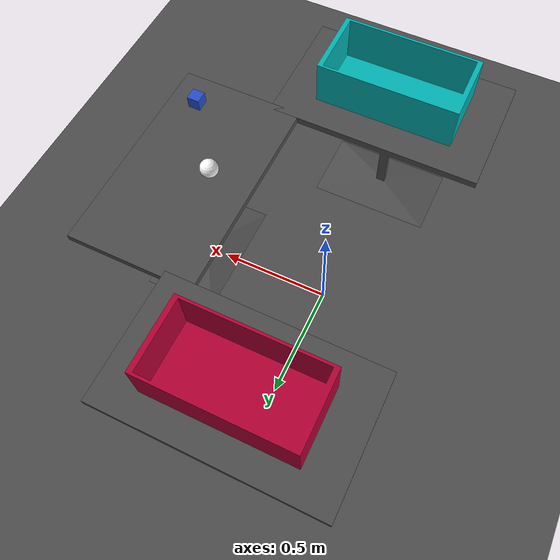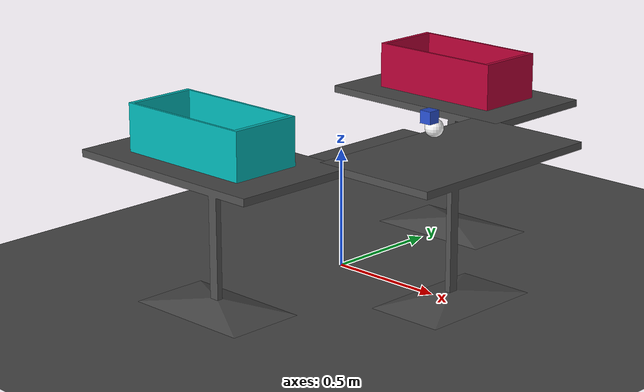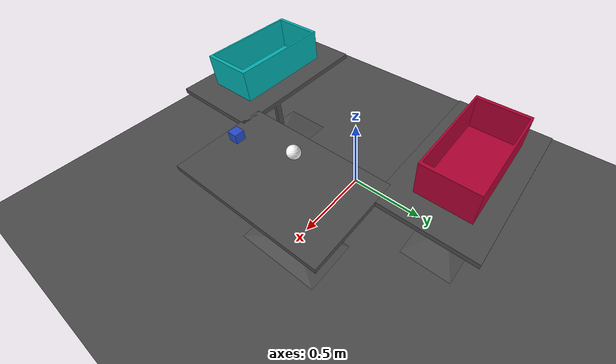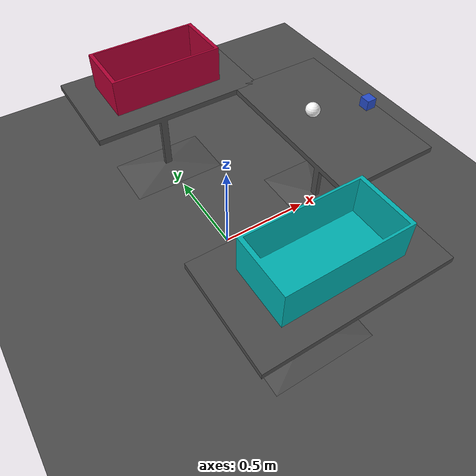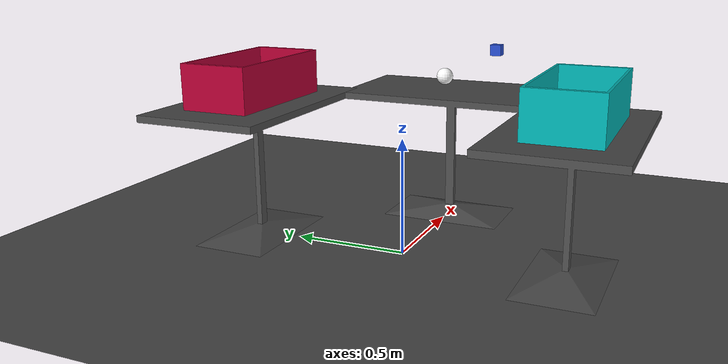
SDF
<sdf version="1.6">
 <world name="default">
  <light name="sun" type="directional">
   <pose>0 0 10 0 -0 0</pose>
   <diffuse>0.8 0.8 0.8 1</diffuse>
   <specular>0.2 0.2 0.2 1</specular>
   <attenuation>
    <range>1000</range>
    <constant>0.9</constant>
    <linear>0.01</linear>
    <quadratic>0.001</quadratic>
   </attenuation>
   <direction>-0.5 0.1 -0.9</direction>
  </light>
  <model name="ground_plane">
   <static>1</static>
   <link name="link">
    <collision name="collision">
     <geometry><plane><normal>0 0 1</normal><size>100 100</size></plane></geometry>
     <surface><friction><ode><mu>100</mu><mu2>50</mu2></ode></friction></surface>
    </collision>
    <visual name="visual">
     <cast_shadows>0</cast_shadows>
     <geometry><plane><normal>0 0 1</normal><size>100 100</size></plane></geometry>
     <material>
      <script><uri>file://media/materials/scripts/gazebo.material</uri><name>Gazebo/DarkGrey</name></script>
     </material>
    </visual>
   </link>
  </model>
  <gravity>0 0 -9.8</gravity>
  <magnetic_field>6e-06 2.3e-05 -4.2e-05</magnetic_field>
  <atmosphere type="adiabatic"/>
  <physics name="default_physics" default="0" type="ode">
   <max_step_size>0.001</max_step_size>
   <real_time_factor>1</real_time_factor>
   <real_time_update_rate>1000</real_time_update_rate>
  </physics>
  <scene><ambient>0.4 0.4 0.4 1</ambient><background>0.7 0.7 0.7 1</background><shadows>1</shadows></scene>
  <spherical_coordinates>
   <surface_model>EARTH_WGS84</surface_model>
   <latitude_deg>0</latitude_deg>
   <longitude_deg>0</longitude_deg>
   <elevation>0</elevation>
   <heading_deg>0</heading_deg>
  </spherical_coordinates>
  <model name="dropbox">
   <link name="link_0">
    <pose>0 -0 0 0 0 -1.56873</pose>
    <inertial>
     <mass>1</mass>
     <inertia>
      <ixx>0.166667</ixx>
      <ixy>0</ixy>
      <ixz>0</ixz>
      <iyy>0.166667</iyy>
      <iyz>0</iyz>
      <izz>0.166667</izz>
     </inertia>
    </inertial>
    <visual name="visual">
     <geometry><mesh><uri>model://dropbox/meshes/dropbox.dae</uri><scale>1 1 1</scale></mesh></geometry>
     <material>
      <lighting>1</lighting>
      <script><uri>file://media/materials/scripts/gazebo.material</uri><name>Gazebo/Grey</name></script>
      <ambient>0 0.3 0.3 1</ambient>
      <diffuse>0 0.7 0.7 1</diffuse>
      <specular>0 0.01 0.01 1</specular>
      <emissive>0 0 0 1</emissive>
     </material>
    </visual>
    <collision name="collision">
     <geometry><mesh><uri>model://dropbox/meshes/dropbox.dae</uri><scale>1 1 1</scale></mesh></geometry>
     <surface>
      <friction>
       <ode><mu>1</mu><mu2>1</mu2><fdir1>0 0 0</fdir1><slip1>0</slip1><slip2>0</slip2></ode>
       <torsional>
        <coefficient>1</coefficient>
        <patch_radius>0</patch_radius>
        <surface_radius>0</surface_radius>
        <use_patch_radius>1</use_patch_radius>
        <ode><slip>0</slip></ode>
       </torsional>
      </friction>
      <bounce><restitution_coefficient>0</restitution_coefficient><threshold>1e+06</threshold></bounce>
      <contact>
       <collide_without_contact>0</collide_without_contact>
       <collide_without_contact_bitmask>1</collide_without_contact_bitmask>
       <collide_bitmask>1</collide_bitmask>
       <ode>
        <soft_cfm>0</soft_cfm>
        <soft_erp>0.2</soft_erp>
        <kp>1e+13</kp>
        <kd>1</kd>
        <max_vel>0.01</max_vel>
        <min_depth>0</min_depth>
       </ode>
       <bullet>
        <split_impulse>1</split_impulse>
        <split_impulse_penetration_threshold>-0.01</split_impulse_penetration_threshold>
        <soft_cfm>0</soft_cfm>
        <soft_erp>0.2</soft_erp>
        <kp>1e+13</kp>
        <kd>1</kd>
       </bullet>
      </contact>
     </surface>
    </collision>
   </link>
   <static>1</static>
   <pose>0 -0.71 0.605 0 -0 0</pose>
  </model>
  <model name="dropbox_clone">
   <link name="link_0">
    <pose>0 -0 0 0 0 -1.56873</pose>
    <inertial>
     <mass>1</mass>
     <inertia>
      <ixx>0.166667</ixx>
      <ixy>0</ixy>
      <ixz>0</ixz>
      <iyy>0.166667</iyy>
      <iyz>0</iyz>
      <izz>0.166667</izz>
     </inertia>
    </inertial>
    <visual name="visual">
     <geometry><mesh><uri>model://dropbox/meshes/dropbox.dae</uri><scale>1 1 1</scale></mesh></geometry>
     <material>
      <lighting>1</lighting>
      <script><uri>file://media/materials/scripts/gazebo.material</uri><name>Gazebo/Grey</name></script>
      <ambient>0.3 0 0.1 1</ambient>
      <diffuse>0.7 0 0.2 1</diffuse>
      <specular>0.01 0 0.01 1</specular>
      <emissive>0 0 0 1</emissive>
     </material>
    </visual>
    <collision name="collision">
     <geometry><mesh><uri>model://dropbox/meshes/dropbox.dae</uri><scale>1 1 1</scale></mesh></geometry>
     <surface>
      <friction>
       <ode><mu>1</mu><mu2>1</mu2><fdir1>0 0 0</fdir1><slip1>0</slip1><slip2>0</slip2></ode>
       <torsional>
        <coefficient>1</coefficient>
        <patch_radius>0</patch_radius>
        <surface_radius>0</surface_radius>
        <use_patch_radius>1</use_patch_radius>
        <ode><slip>0</slip></ode>
       </torsional>
      </friction>
      <bounce><restitution_coefficient>0</restitution_coefficient><threshold>1e+06</threshold></bounce>
      <contact>
       <collide_without_contact>0</collide_without_contact>
       <collide_without_contact_bitmask>1</collide_without_contact_bitmask>
       <collide_bitmask>1</collide_bitmask>
       <ode>
        <soft_cfm>0</soft_cfm>
        <soft_erp>0.2</soft_erp>
        <kp>1e+13</kp>
        <kd>1</kd>
        <max_vel>0.01</max_vel>
        <min_depth>0</min_depth>
       </ode>
       <bullet>
        <split_impulse>1</split_impulse>
        <split_impulse_penetration_threshold>-0.01</split_impulse_penetration_threshold>
        <soft_cfm>0</soft_cfm>
        <soft_erp>0.2</soft_erp>
        <kp>1e+13</kp>
        <kd>1</kd>
       </bullet>
      </contact>
     </surface>
    </collision>
   </link>
   <static>1</static>
   <pose>0 0.71 0.605 0 -0 0</pose>
  </model>
  <model name="short_table">
   <link name="link_0">
    <inertial>
     <mass>1</mass>
     <inertia>
      <ixx>0.166667</ixx>
      <ixy>0</ixy>
      <ixz>0</ixz>
      <iyy>0.166667</iyy>
      <iyz>0</iyz>
      <izz>0.166667</izz>
     </inertia>
    </inertial>
    <visual name="visual">
     <geometry><mesh><uri>model://short_table/meshes/short_table.dae</uri><scale>1 1 1</scale></mesh></geometry>
     <material>
      <lighting>1</lighting>
      <script><uri>file://media/materials/scripts/gazebo.material</uri><name>Gazebo/DarkGray</name></script>
     </material>
    </visual>
    <collision name="collision">
     <geometry><mesh><uri>model://short_table/meshes/short_table.dae</uri><scale>1 1 1</scale></mesh></geometry>
     <surface>
      <friction>
       <ode><mu>1</mu><mu2>1</mu2><fdir1>0 0 0</fdir1><slip1>0</slip1><slip2>0</slip2></ode>
       <torsional>
        <coefficient>1</coefficient>
        <patch_radius>0</patch_radius>
        <surface_radius>0</surface_radius>
        <use_patch_radius>1</use_patch_radius>
        <ode><slip>0</slip></ode>
       </torsional>
      </friction>
      <bounce><restitution_coefficient>0</restitution_coefficient><threshold>1e+06</threshold></bounce>
      <contact>
       <collide_without_contact>0</collide_without_contact>
       <collide_without_contact_bitmask>1</collide_without_contact_bitmask>
       <collide_bitmask>1</collide_bitmask>
       <ode>
        <soft_cfm>0</soft_cfm>
        <soft_erp>0.2</soft_erp>
        <kp>1e+13</kp>
        <kd>1</kd>
        <max_vel>0.01</max_vel>
        <min_depth>0</min_depth>
       </ode>
       <bullet>
        <split_impulse>1</split_impulse>
        <split_impulse_penetration_threshold>-0.01</split_impulse_penetration_threshold>
        <soft_cfm>0</soft_cfm>
        <soft_erp>0.2</soft_erp>
        <kp>1e+13</kp>
        <kd>1</kd>
       </bullet>
      </contact>
     </surface>
    </collision>
   </link>
   <static>1</static>
   <pose>0.6 0 0 0 -0 0</pose>
  </model>
  <model name="short_table_clone">
   <link name="link_0">
    <inertial>
     <mass>1</mass>
     <inertia>
      <ixx>0.166667</ixx>
      <ixy>0</ixy>
      <ixz>0</ixz>
      <iyy>0.166667</iyy>
      <iyz>0</iyz>
      <izz>0.166667</izz>
     </inertia>
    </inertial>
    <visual name="visual">
     <geometry><mesh><uri>model://short_table/meshes/short_table.dae</uri><scale>1 1 1</scale></mesh></geometry>
     <material>
      <lighting>1</lighting>
      <script><uri>file://media/materials/scripts/gazebo.material</uri><name>Gazebo/DarkGray</name></script>
     </material>
    </visual>
    <collision name="collision">
     <geometry><mesh><uri>model://short_table/meshes/short_table.dae</uri><scale>1 1 1</scale></mesh></geometry>
     <surface>
      <friction>
       <ode><mu>1</mu><mu2>1</mu2><fdir1>0 0 0</fdir1><slip1>0</slip1><slip2>0</slip2></ode>
       <torsional>
        <coefficient>1</coefficient>
        <patch_radius>0</patch_radius>
        <surface_radius>0</surface_radius>
        <use_patch_radius>1</use_patch_radius>
        <ode><slip>0</slip></ode>
       </torsional>
      </friction>
      <bounce><restitution_coefficient>0</restitution_coefficient><threshold>1e+06</threshold></bounce>
      <contact>
       <collide_without_contact>0</collide_without_contact>
       <collide_without_contact_bitmask>1</collide_without_contact_bitmask>
       <collide_bitmask>1</collide_bitmask>
       <ode>
        <soft_cfm>0</soft_cfm>
        <soft_erp>0.2</soft_erp>
        <kp>1e+13</kp>
        <kd>1</kd>
        <max_vel>0.01</max_vel>
        <min_depth>0</min_depth>
       </ode>
       <bullet>
        <split_impulse>1</split_impulse>
        <split_impulse_penetration_threshold>-0.01</split_impulse_penetration_threshold>
        <soft_cfm>0</soft_cfm>
        <soft_erp>0.2</soft_erp>
        <kp>1e+13</kp>
        <kd>1</kd>
       </bullet>
      </contact>
     </surface>
    </collision>
   </link>
   <static>1</static>
   <pose>0 -0.7 0 0 -0 1.57</pose>
  </model>
  <model name="short_table_clone_0">
   <link name="link_0">
    <inertial>
     <mass>1</mass>
     <inertia>
      <ixx>0.166667</ixx>
      <ixy>0</ixy>
      <ixz>0</ixz>
      <iyy>0.166667</iyy>
      <iyz>0</iyz>
      <izz>0.166667</izz>
     </inertia>
    </inertial>
    <visual name="visual">
     <geometry><mesh><uri>model://short_table/meshes/short_table.dae</uri><scale>1 1 1</scale></mesh></geometry>
     <material>
      <lighting>1</lighting>
      <script><uri>file://media/materials/scripts/gazebo.material</uri><name>Gazebo/DarkGray</name></script>
     </material>
    </visual>
    <collision name="collision">
     <geometry><mesh><uri>model://short_table/meshes/short_table.dae</uri><scale>1 1 1</scale></mesh></geometry>
     <surface>
      <friction>
       <ode><mu>1</mu><mu2>1</mu2><fdir1>0 0 0</fdir1><slip1>0</slip1><slip2>0</slip2></ode>
       <torsional>
        <coefficient>1</coefficient>
        <patch_radius>0</patch_radius>
        <surface_radius>0</surface_radius>
        <use_patch_radius>1</use_patch_radius>
        <ode><slip>0</slip></ode>
       </torsional>
      </friction>
      <bounce><restitution_coefficient>0</restitution_coefficient><threshold>1e+06</threshold></bounce>
      <contact>
       <collide_without_contact>0</collide_without_contact>
       <collide_without_contact_bitmask>1</collide_without_contact_bitmask>
       <collide_bitmask>1</collide_bitmask>
       <ode>
        <soft_cfm>0</soft_cfm>
        <soft_erp>0.2</soft_erp>
        <kp>1e+13</kp>
        <kd>1</kd>
        <max_vel>0.01</max_vel>
        <min_depth>0</min_depth>
       </ode>
       <bullet>
        <split_impulse>1</split_impulse>
        <split_impulse_penetration_threshold>-0.01</split_impulse_penetration_threshold>
        <soft_cfm>0</soft_cfm>
        <soft_erp>0.2</soft_erp>
        <kp>1e+13</kp>
        <kd>1</kd>
       </bullet>
      </contact>
     </surface>
    </collision>
   </link>
   <static>1</static>
   <pose>0 0.7 0 0 -0 1.57</pose>
  </model>
  <include>
   <uri>model://cricket_ball</uri>
   <name>cricket_ball</name>
   <pose>0.5 0 0.65 0 0 0</pose>
   <link name="cricket_ball_link"><pose>0.65 -0.2 0.775 0 0 0</pose></link>
  </include>
  <joint name="cricket_ball_joint" type="fixed">
   <parent link="world"/>
   <child link="cricket_ball_link"/>
   <origin xyz="0.65 -0.2 0.775" rpy="0.0 0.0 0.0"/>
  </joint>
  <model name="cube1">
   <pose>0.65 -0.2 0.775 0 0 0</pose>
   <link name="link">
    <pose>0 0 0.025 0 0 0</pose>
    <inertial>
     <mass>0.0565</mass>
     <inertia>
      <ixx>2.3541666666666672e-05</ixx>
      <ixy>0</ixy>
      <ixz>0</ixz>
      <iyy>2.3541666666666672e-05</iyy>
      <iyz>0</iyz>
      <izz>2.3541666666666672e-05</izz>
     </inertia>
    </inertial>
    <collision name="collision">
     <geometry><box><size>0.05 0.05 0.05</size></box></geometry>
     <surface>
      <contact>
       <poissons_ratio>0.347</poissons_ratio>
       <elastic_modulus>8.8e+09</elastic_modulus>
       <ode><kp>100000</kp><kd>1</kd><max_vel>1.0</max_vel><min_depth>0.001</min_depth></ode>
      </contact>
      <friction>
       <torsional>
        <coefficient>1.0</coefficient>
        <use_patch_radius>0</use_patch_radius>
        <surface_radius>0.05</surface_radius>
       </torsional>
      </friction>
     </surface>
    </collision>
    <visual name="visual">
     <geometry><box><size>0.05 0.05 0.05</size></box></geometry>
     <material>
      <script><uri>file://media/materials/scripts/gazebo.material</uri><name>Gazebo/Blue</name></script>
     </material>
    </visual>
   </link>
  </model>
 </world>
</sdf>

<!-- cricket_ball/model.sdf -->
<sdf version="1.5">
  <model name="cricket_ball">
    <link name="link">
      <pose>0 0 0.0375 0 0 0</pose>
      <inertial>
        <mass>0.1467</mass>
        <inertia>
          <ixx>8.251875e-05</ixx>
          <ixy>0</ixy>
          <ixz>0</ixz>
          <iyy>8.251875e-05</iyy>
          <iyz>0</iyz>
          <izz>8.251875e-05</izz>
        </inertia>
      </inertial>

      <collision name="collision">
        <geometry>
          <sphere>
            <radius>0.0375</radius>
          </sphere>
        </geometry>
        <surface>
          <contact>
            <!-- Red Pine coefficients for longitudinal axis of the wood
                 according to:
                 http://www.fpl.fs.fed.us/documnts/fplgtr/fplgtr113/ch04.pdf -->
            <poissons_ratio>0.347</poissons_ratio>
            <elastic_modulus>8.8e+09</elastic_modulus>
            <ode>
              <kp>100000</kp>
              <kd>100</kd>
              <max_vel>100.0</max_vel>
              <min_depth>0.001</min_depth>
            </ode>
          </contact>
          <friction>
            <torsional>
              <coefficient>1.0</coefficient>
              <use_patch_radius>0</use_patch_radius>
              <surface_radius>0.01</surface_radius>
            </torsional>
          </friction>
        </surface>
      </collision>

      <visual name="visual">
        <geometry>
          <sphere>
            <radius>0.0375</radius>
          </sphere>
        </geometry>
        <material><diffuse>1 1 1 1</diffuse><specular>0.1 0.1 0.1 1</specular></material>
      </visual>

      <!-- approximate rolling friction -->
      <velocity_decay>
        <linear>0.00</linear>
        <angular>0.005</angular>
      </velocity_decay>
    </link>
  </model>
</sdf>
